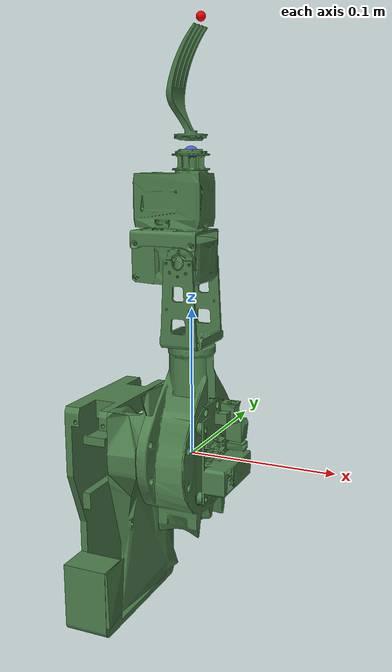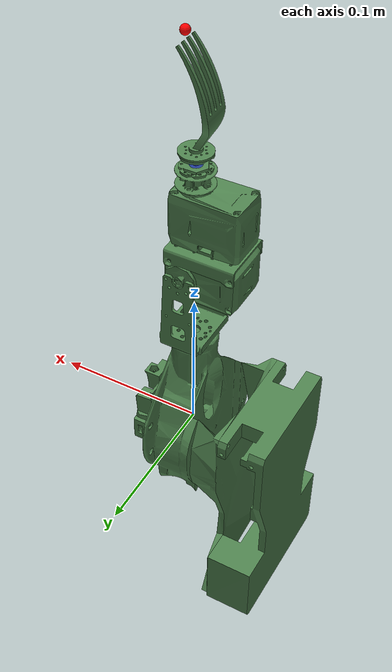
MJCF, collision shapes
<mujoco model="articutool">
  <compiler angle="radian"/>

  <default>
    <default class="articutool_visual">
      <geom type="mesh" contype="0" conaffinity="0" group="2"/>
    </default>
    <default class="articutool_collision">
      <geom type="mesh" contype="1" conaffinity="1" group="3"
            rgba="0.3 0.5 0.3 0.2"/>
    </default>
  </default>

  <asset>
    <material name="abs_black" rgba="0.12 0.12 0.12 1" specular="0.1" shininess="0.05"/>
    <material name="dynamixel_black" rgba="0.08 0.08 0.08 1" specular="0.4" shininess="0.3"/>
    <material name="pcb_green" rgba="0.1 0.3 0.15 1" specular="0.2" shininess="0.1"/>
    <material name="robotis_bracket" rgba="0.12 0.12 0.14 1" specular="0.2" shininess="0.1"/>
    <material name="machined_aluminum" rgba="0.7 0.72 0.75 1" specular="0.7" shininess="0.5" reflectance="0.15"/>
    <material name="ft_aluminum" rgba="0.45 0.47 0.50 1" specular="0.6" shininess="0.4" reflectance="0.1"/>
    <material name="fork_steel" rgba="0.75 0.75 0.78 1" specular="0.8" shininess="0.7" reflectance="0.2"/>
    <mesh name="handle_kg2" file="handle_kg2.stl" scale="0.001 0.001 0.001"/>
    <mesh name="handle_cover_kg2" file="handle_cover_kg2.stl" scale="0.001 0.001 0.001"/>
    <mesh name="u2d2" file="u2d2.stl" scale="0.001 0.001 0.001"/>
    <mesh name="electronics_holder_upper_plate" file="electronics_holder_upper_plate.stl" scale="0.001 0.001 0.001"/>
    <mesh name="electronics_holder_bottom_plate" file="electronics_holder_bottom_plate.stl" scale="0.001 0.001 0.001"/>
    <mesh name="electronics_holder_wire_guard" file="electronics_holder_wire_guard.stl" scale="0.001 0.001 0.001"/>
    <mesh name="fr12_h103" file="fr12_h103.stl" scale="0.001 0.001 0.001"/>
    <mesh name="motor_xc430" file="motor_xc430.stl" scale="0.001 0.001 0.001"/>
    <mesh name="fr12_s101" file="fr12_s101.stl" scale="0.001 0.001 0.001"/>
    <mesh name="motor_xc430_to_ft_hex21_adapter" file="motor_xc430_to_ft_hex21_adapter.stl" scale="0.001 0.001 0.001"/>
    <mesh name="ft_hex21" file="ft_hex21.stl" scale="0.001 0.001 0.001"/>
    <mesh name="fork_tool" file="fork_tool.stl" scale="0.001 0.001 0.001"/>
    <mesh name="spoon_tool" file="spoon_tool.stl" scale="0.001 0.001 0.001"/>
  </asset>

  <worldbody>
    <!-- fork_base = atool_handle (flattened — same origin, no joint between them).
         Combined inertial of handle (0.028 kg) + handle (0.028 kg from xacro). -->
    <body gravcomp="1" name="fork_base">
      <freejoint name="fork_freejoint"/>
      <inertial pos="0 0 0" mass="0.056"
                fullinertia="0.00006228 0.000023734 0.000076956 -0.00000101252 0.000000164542 0.0000010801"/>
      <site name="grasp_site" pos="0 0 0" size="0.005" rgba="0 1 0 0.5"/>
      <geom class="articutool_visual" mesh="handle_kg2" material="abs_black"/>
      <geom class="articutool_collision" mesh="handle_kg2"/>

      <!-- IMU (ICM-20948): rpy=[0, -π/2, -π] from xacro atool_imu_frame. -->
      <site name="imu_site" pos="0 0 0"
            quat="0 -0.707107 0 -0.707107"
            size="0.003" rgba="1 1 0 0.5"/>

      <!-- Handle cover + U2D2: xyz=[0.018, 0, 0.011], rpy=[-π/2, 0, -π/2] -->
      <body gravcomp="1" name="atool_handle_cover" pos="0.018 0 0.011"
            quat="0.5 -0.5 0.5 -0.5">
        <inertial pos="0 0 0" mass="0.056" diaginertia="5e-6 5e-6 5e-6"/>
        <geom class="articutool_visual" mesh="handle_cover_kg2" material="abs_black"/>
        <geom class="articutool_collision" mesh="handle_cover_kg2"/>
        <!-- U2D2: xyz=[0, 0.008, -0.004], rpy=[0, 0, π/2] relative to handle_cover -->
        <geom class="articutool_visual" mesh="u2d2" material="pcb_green"
              pos="0 0.008 -0.004" quat="0.707107 0 0 0.707107"/>
        <geom class="articutool_collision" mesh="u2d2"
              pos="0 0.008 -0.004" quat="0.707107 0 0 0.707107"/>
      </body>

      <!-- Electronics holder: xyz=[-0.015, 0, 0], rpy=[0, -π/2, π] -->
      <body gravcomp="1" name="atool_electronics" pos="-0.015 0 0"
            quat="0 0.707107 0 0.707107">
        <inertial pos="0 0 0" mass="0.091" diaginertia="5e-6 5e-6 5e-6"/>
        <geom class="articutool_visual" mesh="electronics_holder_upper_plate" material="abs_black"/>
        <geom class="articutool_visual" mesh="electronics_holder_bottom_plate" material="abs_black"/>
        <geom class="articutool_visual" mesh="electronics_holder_wire_guard" material="abs_black"/>
        <geom class="articutool_collision" mesh="electronics_holder_upper_plate"/>
        <geom class="articutool_collision" mesh="electronics_holder_bottom_plate"/>
      </body>

      <!-- Base bracket fr12_h103: xyz=[0, 0, 0.076472] -->
      <body gravcomp="1" name="atool_base" pos="0 0 0.076472">
        <inertial pos="0 0 0" mass="0.091" diaginertia="5e-6 5e-6 5e-6"/>
        <geom class="articutool_visual" mesh="fr12_h103" material="robotis_bracket"/>
        <geom class="articutool_collision" mesh="fr12_h103"/>

        <!-- Motor 1 (tilt): xyz=[0, 0, 0.055], rpy=[-π/2, 0, 0]
             Joint1: axis=[0,0,-1], range=±π/2, torque=1.4 Nm -->
        <body gravcomp="1" name="atool_link1" pos="0 0 0.055"
              quat="0.707107 -0.707107 0 0">
          <inertial pos="0.000216 -0.014751 -0.016796" mass="0.065"
                    fullinertia="0.01868 0.009586 0.017347 0.0000013 -0.000045 -0.000845"/>
          <joint name="atool_joint1" type="hinge" axis="0 0 -1"
                 range="-1.5708 1.5708" limited="true" damping="0.1" armature="0.01"/>
          <geom class="articutool_visual" mesh="motor_xc430" material="dynamixel_black"/>
          <geom class="articutool_collision" mesh="motor_xc430"/>
          <!-- Motor link bracket fr12_s101 (flattened — same origin as link1) -->
          <geom class="articutool_visual" mesh="fr12_s101" material="robotis_bracket"
                quat="0.5 0.5 0.5 -0.5"/>
          <geom class="articutool_collision" mesh="fr12_s101"
                quat="0.5 0.5 0.5 -0.5"/>

          <!-- Motor 2: xyz=[0, -0.03825, 0], rpy=[π/2, 0, 0] -->
          <body gravcomp="1" name="atool_link2" pos="0 -0.03825 0"
                quat="0.707107 0.707107 0 0">
            <inertial pos="0.000216 -0.014751 -0.016796" mass="0.065"
                      fullinertia="0.01868 0.009586 0.017347 0.0000013 -0.000045 -0.000845"/>
            <geom class="articutool_visual" mesh="motor_xc430" material="dynamixel_black"/>
            <geom class="articutool_collision" mesh="motor_xc430"/>

            <!-- F/T adapter: xyz=[0, 0, 0.019], rpy=[π/2, 0, 0]
                 Joint2: axis=[0,1,0], range=±π, torque=1.4 Nm -->
            <body gravcomp="1" name="atool_ft_adapter" pos="0 0 0.019"
                  quat="0.707107 0.707107 0 0">
              <inertial pos="0 0 0" mass="0.001" diaginertia="5e-6 5e-6 5e-6"/>
              <joint name="atool_joint2" type="hinge" axis="0 1 0"
                     range="-3.14159 3.14159" limited="true" damping="0.05" armature="0.01"/>
              <geom class="articutool_visual" mesh="motor_xc430_to_ft_hex21_adapter" material="machined_aluminum"/>
              <geom class="articutool_collision" mesh="motor_xc430_to_ft_hex21_adapter"/>

              <!-- F/T sensor (Hex21): xyz=[0, 0.01, 0] -->
              <body gravcomp="1" name="atool_ft" pos="0 0.01 0">
                <inertial pos="0 0 0" mass="0.0634"
                          fullinertia="0.000005236 0.000006265 0.000006408 -0.000000313 0.000000014 -0.00000004"/>
                <geom class="articutool_visual" mesh="ft_hex21" material="ft_aluminum"/>
                <geom class="articutool_collision" mesh="ft_hex21"/>
                <site name="ft_sensor_site" pos="0 0 0" size="0.005" rgba="0 0 1 0.5"/>

                <!-- Fork tool: xyz=[0, 0.0109, 0], rpy=[-π/2, 0, 0] -->
                <body gravcomp="1" name="fork_tine" pos="0 0.0109 0"
                      quat="0.707107 -0.707107 0 0">
                  <inertial pos="0 0 0" mass="0.024"
                            fullinertia="0.0000098769 0.000009848 0.0000015674 0.000000001 -0.000000003 0.00000058"/>
                  <geom class="articutool_visual" mesh="fork_tool" material="fork_steel"/>
                  <geom class="articutool_collision" mesh="fork_tool"/>

                  <!-- Fork tip: xyz=[0.007, 0, 0.07], rpy=[0, 0, -π/2] -->
                  <site name="fork_tip" pos="0.007 0 0.07"
                        quat="0.707107 0 0 -0.707107"
                        size="0.003" rgba="1 0 0 1"/>
                </body>
              </body>
            </body>
          </body>
        </body>
      </body>
    </body>
  </worldbody>

  <actuator>
    <general name="act_atool_tilt" joint="atool_joint1"
             gaintype="fixed" biastype="affine"
             gainprm="100" biasprm="0 -100 -3"
             forcerange="-1.4 1.4" ctrlrange="-1.5708 1.5708" ctrllimited="true"/>
    <general name="act_atool_roll" joint="atool_joint2"
             gaintype="fixed" biastype="affine"
             gainprm="100" biasprm="0 -100 -3"
             forcerange="-1.4 1.4" ctrlrange="-3.14159 3.14159" ctrllimited="true"/>
  </actuator>

  <sensor>
    <!-- Resense Hex21 F/T sensor (HEX210S-060S-1R1-1).
         Force range: Fx,Fy,Fz = ±50 N. Torque range: Mx,My,Mz = ±0.5 Nm.
         Accuracy 1% FS, 24-bit ADC. Noise estimated from 1% accuracy. -->
    <force name="ft_force" site="ft_sensor_site" cutoff="50" noise="0.5"/>
    <torque name="ft_torque" site="ft_sensor_site" cutoff="0.5" noise="0.005"/>
    <accelerometer name="imu_accel" site="imu_site" noise="0.0023"/>
    <gyro name="imu_gyro" site="imu_site" noise="0.0026"/>
  </sensor>
</mujoco>
